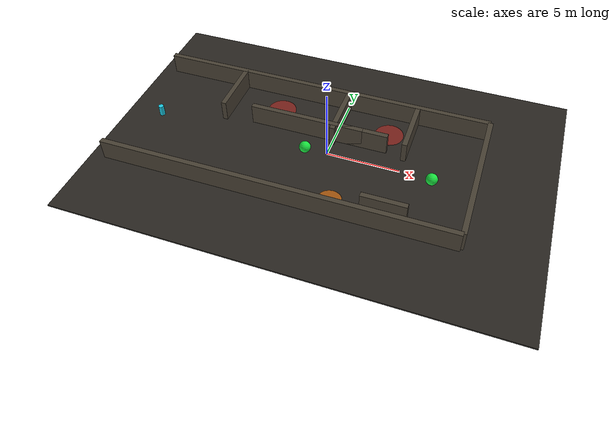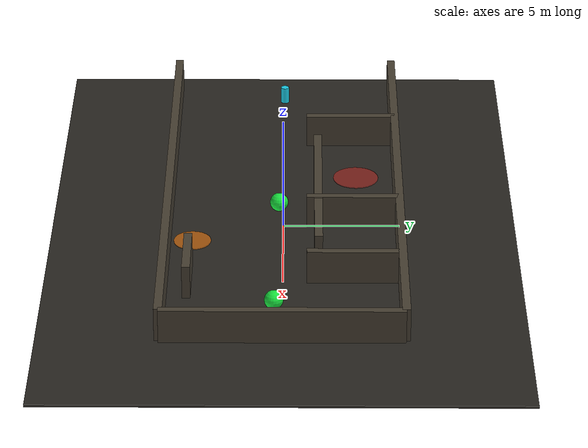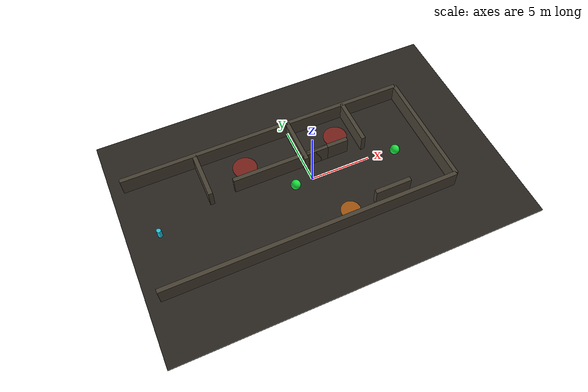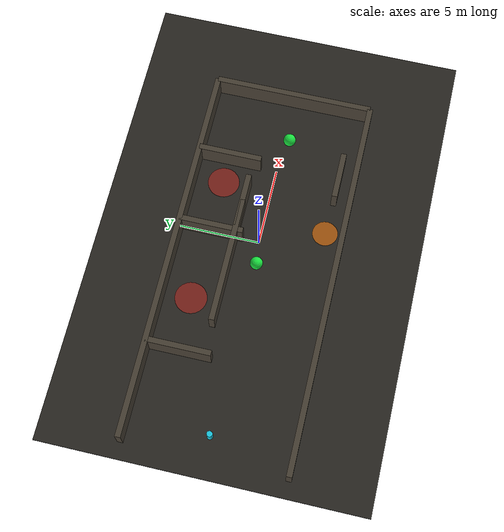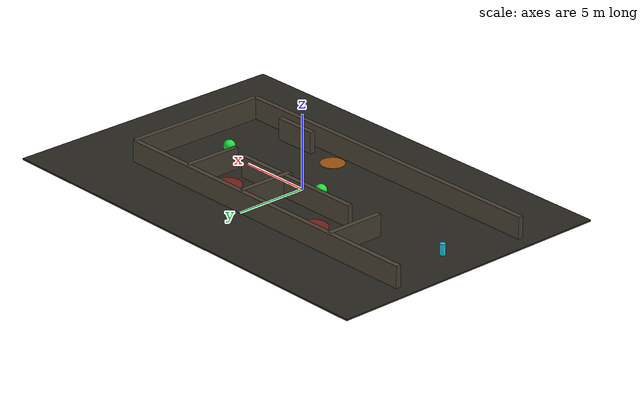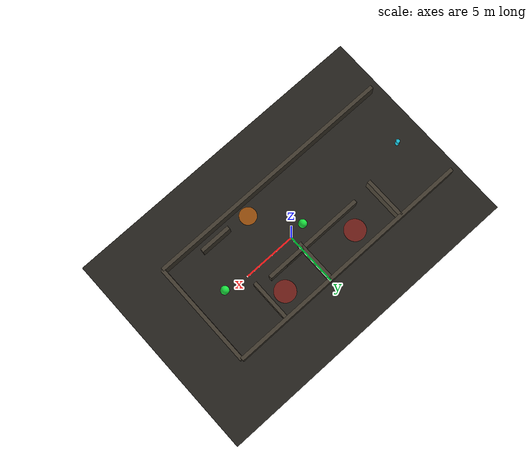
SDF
<sdf version="1.10">
 <world name="living_map_mine">
  <scene>
   <ambient>0.6 0.6 0.6 1</ambient>
   <background>0.75 0.8 0.85 1</background>
   <shadows>false</shadows>
  </scene>
  <physics name="1ms" type="ignored">
   <max_step_size>0.001</max_step_size>
   <real_time_factor>1</real_time_factor>
  </physics>
  <plugin filename="gz-sim-physics-system" name="gz::sim::systems::Physics"/>
  <plugin filename="gz-sim-user-commands-system" name="gz::sim::systems::UserCommands"/>
  <plugin filename="gz-sim-scene-broadcaster-system" name="gz::sim::systems::SceneBroadcaster"/>
  <plugin filename="gz-sim-sensors-system" name="gz::sim::systems::Sensors">
   <render_engine>ogre2</render_engine>
  </plugin>
  <light type="directional" name="sun">
   <pose>0 0 10 0 0 0</pose>
   <diffuse>.7 .7 .7 1</diffuse>
   <direction>-.5 .2 -1</direction>
  </light>
  <model name="floor">
   <static>true</static>
   <link name="l">
    <collision name="c"><geometry><box><size>30 20 .1</size></box></geometry></collision>
    <visual name="v">
     <geometry><box><size>30 20 .1</size></box></geometry>
     <material><ambient>.16 .15 .13 1</ambient><diffuse>.16 .15 .13 1</diffuse></material>
    </visual>
   </link>
  </model>
  <model name="wall0">
   <static>true</static>
   <pose>-2 5 .75 0 0 0</pose>
   <link name="l">
    <collision name="c"><geometry><box><size>24 0.35 1.5</size></box></geometry></collision>
    <visual name="v">
     <geometry><box><size>24 0.35 1.5</size></box></geometry>
     <material><ambient>.28 .25 .20 1</ambient><diffuse>.28 .25 .20 1</diffuse></material>
    </visual>
   </link>
  </model>
  <model name="wall1">
   <static>true</static>
   <pose>-2 -5 .75 0 0 0</pose>
   <link name="l">
    <collision name="c"><geometry><box><size>24 0.35 1.5</size></box></geometry></collision>
    <visual name="v">
     <geometry><box><size>24 0.35 1.5</size></box></geometry>
     <material><ambient>.28 .25 .20 1</ambient><diffuse>.28 .25 .20 1</diffuse></material>
    </visual>
   </link>
  </model>
  <model name="wall2">
   <static>true</static>
   <pose>10 0 .75 0 0 0</pose>
   <link name="l">
    <collision name="c"><geometry><box><size>0.35 10 1.5</size></box></geometry></collision>
    <visual name="v">
     <geometry><box><size>0.35 10 1.5</size></box></geometry>
     <material><ambient>.28 .25 .20 1</ambient><diffuse>.28 .25 .20 1</diffuse></material>
    </visual>
   </link>
  </model>
  <model name="wall3">
   <static>true</static>
   <pose>-8 3 .75 0 0 0</pose>
   <link name="l">
    <collision name="c"><geometry><box><size>0.35 4 1.5</size></box></geometry></collision>
    <visual name="v">
     <geometry><box><size>0.35 4 1.5</size></box></geometry>
     <material><ambient>.28 .25 .20 1</ambient><diffuse>.28 .25 .20 1</diffuse></material>
    </visual>
   </link>
  </model>
  <model name="wall4">
   <static>true</static>
   <pose>-2 1.5 .75 0 0 0</pose>
   <link name="l">
    <collision name="c"><geometry><box><size>8 0.35 1.5</size></box></geometry></collision>
    <visual name="v">
     <geometry><box><size>8 0.35 1.5</size></box></geometry>
     <material><ambient>.28 .25 .20 1</ambient><diffuse>.28 .25 .20 1</diffuse></material>
    </visual>
   </link>
  </model>
  <model name="wall5">
   <static>true</static>
   <pose>2 1.5 .75 0 0 0</pose>
   <link name="l">
    <collision name="c"><geometry><box><size>3.5 0.35 1.5</size></box></geometry></collision>
    <visual name="v">
     <geometry><box><size>3.5 0.35 1.5</size></box></geometry>
     <material><ambient>.28 .25 .20 1</ambient><diffuse>.28 .25 .20 1</diffuse></material>
    </visual>
   </link>
  </model>
  <model name="wall6">
   <static>true</static>
   <pose>0 3 .75 0 0 0</pose>
   <link name="l">
    <collision name="c"><geometry><box><size>0.35 4 1.5</size></box></geometry></collision>
    <visual name="v">
     <geometry><box><size>0.35 4 1.5</size></box></geometry>
     <material><ambient>.28 .25 .20 1</ambient><diffuse>.28 .25 .20 1</diffuse></material>
    </visual>
   </link>
  </model>
  <model name="wall7">
   <static>true</static>
   <pose>5 3 .75 0 0 0</pose>
   <link name="l">
    <collision name="c"><geometry><box><size>0.35 4 1.5</size></box></geometry></collision>
    <visual name="v">
     <geometry><box><size>0.35 4 1.5</size></box></geometry>
     <material><ambient>.28 .25 .20 1</ambient><diffuse>.28 .25 .20 1</diffuse></material>
    </visual>
   </link>
  </model>
  <model name="wall8">
   <static>true</static>
   <pose>5 -4 .75 0 0 0</pose>
   <link name="l">
    <collision name="c"><geometry><box><size>3 0.35 1.5</size></box></geometry></collision>
    <visual name="v">
     <geometry><box><size>3 0.35 1.5</size></box></geometry>
     <material><ambient>.28 .25 .20 1</ambient><diffuse>.28 .25 .20 1</diffuse></material>
    </visual>
   </link>
  </model>
  <model name="victim_V01">
   <static>true</static>
   <pose>7.24 -0.36 .4 0 0 0</pose>
   <link name="l">
    <visual name="v">
     <geometry><sphere><radius>.4</radius></sphere></geometry>
     <material><ambient>.1 .9 .25 1</ambient><diffuse>.1 .9 .25 1</diffuse></material>
    </visual>
   </link>
  </model>
  <model name="victim_V02">
   <static>true</static>
   <pose>-1.5 -0.2 .4 0 0 0</pose>
   <link name="l">
    <visual name="v">
     <geometry><sphere><radius>.4</radius></sphere></geometry>
     <material><ambient>.1 .9 .25 1</ambient><diffuse>.1 .9 .25 1</diffuse></material>
    </visual>
   </link>
  </model>
  <model name="gas_H01">
   <static>true</static>
   <pose>3.5 3.1 .08 0 0 0</pose>
   <link name="l">
    <visual name="v">
     <geometry><cylinder><radius>1.0</radius><length>.05</length></cylinder></geometry>
     <material><ambient>.9 .15 .12 .45</ambient><diffuse>.9 .15 .12 .45</diffuse></material>
    </visual>
   </link>
  </model>
  <model name="gas_H02">
   <static>true</static>
   <pose>-4.5 3.2 .08 0 0 0</pose>
   <link name="l">
    <visual name="v">
     <geometry><cylinder><radius>1.0</radius><length>.05</length></cylinder></geometry>
     <material><ambient>.9 .15 .12 .45</ambient><diffuse>.9 .15 .12 .45</diffuse></material>
    </visual>
   </link>
  </model>
  <model name="fire_F01">
   <static>true</static>
   <pose>1.5 -3.9 .08 0 0 0</pose>
   <link name="l">
    <visual name="v">
     <geometry><cylinder><radius>0.8</radius><length>.05</length></cylinder></geometry>
     <material><ambient>1 .5 .05 .6</ambient><diffuse>1 .5 .05 .6</diffuse></material>
    </visual>
   </link>
  </model>
  <model name="gateway">
   <static>true</static>
   <pose>-12.5 0 .4 0 0 0</pose>
   <link name="l">
    <visual name="v">
     <geometry><cylinder><radius>.18</radius><length>.8</length></cylinder></geometry>
     <material><ambient>.1 .8 .9 1</ambient><diffuse>.1 .8 .9 1</diffuse></material>
    </visual>
   </link>
  </model>
 </world>
</sdf>
